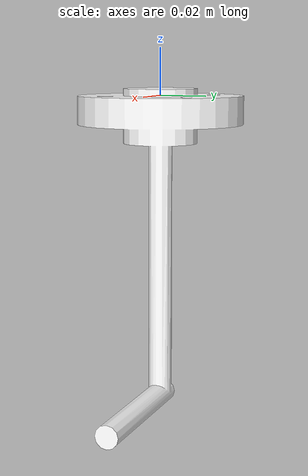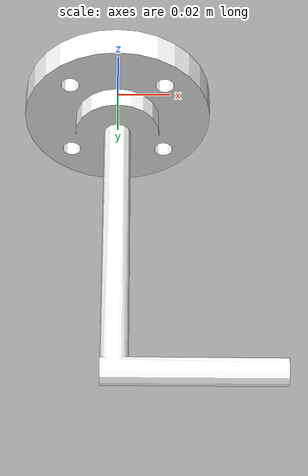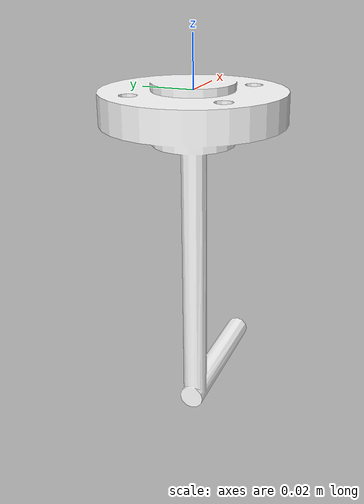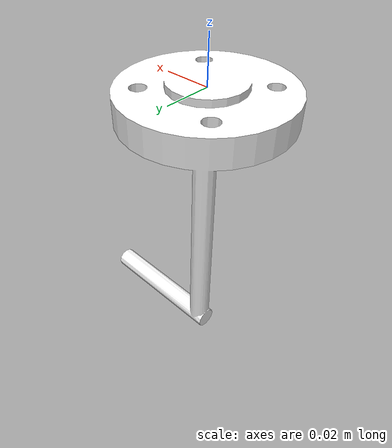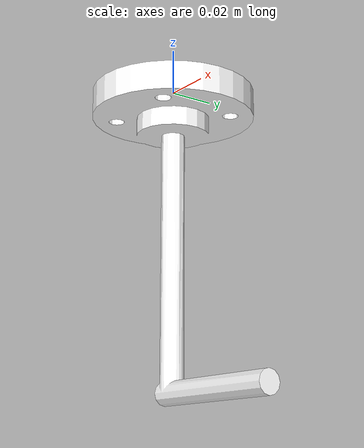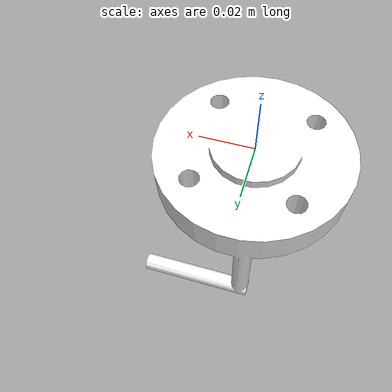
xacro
<?xml version="1.0"?>
<robot xmlns:xacro="http://ros.org/wiki/xacro">

  <xacro:include filename="$(find ur_e_description)/urdf/ur.transmission.xacro" />
  <xacro:include filename="$(find ur_e_description)/urdf/ur.gazebo.xacro" />
<xacro:arg name="kinematics_config" default="$(find ur_e_description)/config/ur5e_default.yaml"/>
  <xacro:include filename="$(find end_effector)/urdf/end_effector.urdf.xacro" />
  <!--xacro:macro kinematics_file="${load_yaml('$(arg kinematics_config)')}"-->
  <xacro:macro name="cylinder_inertial" params="radius length mass *origin">
    <inertial>
      <mass value="${mass}" />
      <xacro:insert_block name="origin" />
      <inertia ixx="${0.0833333 * mass * (3 * radius * radius + length * length)}" ixy="0.0" ixz="0.0"
        iyy="${0.0833333 * mass * (3 * radius * radius + length * length)}" iyz="0.0"
        izz="${0.5 * mass * radius * radius}" />
    </inertial>
  </xacro:macro>

  <xacro:macro name="ur5e_robot" params="prefix joint_limited
    shoulder_pan_lower_limit:=${-pi}    shoulder_pan_upper_limit:=${pi}
    shoulder_lift_lower_limit:=${-pi}    shoulder_lift_upper_limit:=${pi}
    elbow_joint_lower_limit:=${-pi}    elbow_joint_upper_limit:=${pi}
    wrist_1_lower_limit:=${-pi}    wrist_1_upper_limit:=${pi}
    wrist_2_lower_limit:=${-pi}    wrist_2_upper_limit:=${pi}
    wrist_3_lower_limit:=${-pi}    wrist_3_upper_limit:=${pi}
    transmission_hw_interface:=hardware_interface/PositionJointInterface
    safety_limits:=false safety_pos_margin:=0.15
    safety_k_position:=20
    kinematics_file=${load_yaml('$(arg kinematics_config)')}">

    <xacro:property name="__kinematics" value="${kinematics_file['kinematics']}"/>

    <!-- Inertia parameters -->
    <xacro:property name="base_mass" value="4.0" />  <!-- This mass might be incorrect -->
    <xacro:property name="shoulder_mass" value="3.7000" />
    <xacro:property name="upper_arm_mass" value="8.3930" />
    <xacro:property name="forearm_mass" value="2.2750" />
    <xacro:property name="wrist_1_mass" value="1.2190" />
    <xacro:property name="wrist_2_mass" value="1.2190" />
    <xacro:property name="wrist_3_mass" value="0.1879" />

    <xacro:property name="shoulder_cog" value="0.0 0.00193 -0.02561" />
    <xacro:property name="upper_arm_cog" value="0.0 -0.024201 0.2125" />
    <xacro:property name="forearm_cog" value="0.0 0.0265 0.11993" />
    <xacro:property name="wrist_1_cog" value="0.0 0.110949 0.01634" />
    <xacro:property name="wrist_2_cog" value="0.0 0.0018 0.11099" />
    <xacro:property name="wrist_3_cog" value="0.0 0.001159 0.0" />

    <!-- Arbitrary offsets for shoulder/elbow joints -->
    <xacro:property name="shoulder_offset" value="0.138" />
    <xacro:property name="elbow_offset" value="0.007" />
    <xacro:property name="upper_arm_inertia_offset" value="0.138" />  <!-- measured from model -->

    <!-- link lengths used in model -->

    <xacro:property name="shoulder_radius" value="0.060" />   <!-- manually measured -->
    <xacro:property name="upper_arm_radius" value="0.054" />  <!-- manually measured -->
    <xacro:property name="elbow_radius" value="0.060" />      <!-- manually measured -->
    <xacro:property name="forearm_radius" value="0.040" />    <!-- manually measured -->
    <xacro:property name="wrist_radius" value="0.045" />      <!-- manually measured -->

    <!-- This is for compatibility reasons, as transformation between base and base_link was always 180 degree in the ur_description -->
    <xacro:property name="base_correction" value="${pi}" />

    <link name="${prefix}base_link" >
      <visual>
        <origin xyz="0 0 0" rpy="0 0 ${base_correction}"/>
        <geometry>
          <mesh filename="package://ur_e_description/meshes/ur5e/visual/base.dae" />
        </geometry>
        <material name="LightGrey">
          <color rgba="0.7 0.7 0.7 1.0"/>
        </material>
      </visual>
      <collision>
        <origin xyz="0 0 0" rpy="0 0 ${base_correction}"/>
        <geometry>
          <mesh filename="package://ur_e_description/meshes/ur5e/collision/base.stl" />
        </geometry>
      </collision>
      <xacro:cylinder_inertial radius="0.06" length="0.05" mass="${base_mass}">
        <origin xyz="0.0 0.0 0.0" rpy="0 0 0" />
      </xacro:cylinder_inertial>
    </link>

    <joint name="${prefix}shoulder_pan_joint" type="revolute">
      <parent link="${prefix}base_link" />
      <child link = "${prefix}shoulder_link" />
      <origin xyz="${__kinematics['shoulder']['x']} ${__kinematics['shoulder']['y']} ${__kinematics['shoulder']['z']}" rpy="${__kinematics['shoulder']['roll']} ${__kinematics['shoulder']['pitch']} ${__kinematics['shoulder']['yaw'] + base_correction}" />
      <axis xyz="0 0 1" />
      <xacro:unless value="${joint_limited}">
        <limit lower="${-2.0 * pi}" upper="${2.0 * pi}" effort="150.0" velocity="3.14"/>
        <xacro:if value="${safety_limits}">
          <safety_controller soft_lower_limit="${-2.0 * pi + safety_pos_margin}" soft_upper_limit="${2.0 * pi - safety_pos_margin}" k_position="${safety_k_position}" k_velocity="0.0"/>
        </xacro:if>
      </xacro:unless>
      <xacro:if value="${joint_limited}">
        <limit lower="${shoulder_pan_lower_limit}" upper="${shoulder_pan_upper_limit}" effort="150.0" velocity="3.14"/>
        <xacro:if value="${safety_limits}">
          <safety_controller soft_lower_limit="${shoulder_pan_lower_limit + safety_pos_margin}" soft_upper_limit="${shoulder_pan_upper_limit - safety_pos_margin}" k_position="${safety_k_position}" k_velocity="0.0"/>
        </xacro:if>
      </xacro:if>
      <dynamics damping="0.0" friction="0.0"/>
    </joint>

    <link name="${prefix}shoulder_link">
      <visual>
        <origin xyz="0 0 0" rpy="0 0 ${pi}"/>
        <geometry>
          <mesh filename="package://ur_e_description/meshes/ur5e/visual/shoulder.dae" />
        </geometry>
        <material name="LightGrey">
          <color rgba="0.7 0.7 0.7 1.0"/>
        </material>
      </visual>
      <collision>
        <origin xyz="0 0 0" rpy="0 0 ${pi}"/>
        <geometry>
          <mesh filename="package://ur_e_description/meshes/ur5e/collision/shoulder.stl" />
        </geometry>
      </collision>
      <xacro:cylinder_inertial radius="0.06" length="0.15" mass="${shoulder_mass}">
        <origin xyz="0.0 0.0 0.0" rpy="0 0 0" />
      </xacro:cylinder_inertial>
    </link>

    <joint name="${prefix}shoulder_lift_joint" type="revolute">
      <parent link="${prefix}shoulder_link" />
      <child link = "${prefix}upper_arm_link" />
      <origin xyz="${__kinematics['upper_arm']['x']} ${__kinematics['upper_arm']['y']} ${__kinematics['upper_arm']['z']}" rpy="${__kinematics['upper_arm']['roll']} ${__kinematics['upper_arm']['pitch']} ${__kinematics['upper_arm']['yaw']}" />
      <axis xyz="0 0 1" />
      <xacro:unless value="${joint_limited}">
        <limit lower="${-2.0 * pi}" upper="${2.0 * pi}" effort="150.0" velocity="3.14"/>
        <xacro:if value="${safety_limits}">
          <safety_controller soft_lower_limit="${-2.0 * pi + safety_pos_margin}" soft_upper_limit="${2.0 * pi - safety_pos_margin}" k_position="${safety_k_position}" k_velocity="0.0"/>
        </xacro:if>
      </xacro:unless>
      <xacro:if value="${joint_limited}">
        <limit lower="${shoulder_lift_lower_limit}" upper="${shoulder_lift_upper_limit}" effort="150.0" velocity="3.14"/>
        <xacro:if value="${safety_limits}">
          <safety_controller soft_lower_limit="${shoulder_lift_lower_limit + safety_pos_margin}" soft_upper_limit="${shoulder_lift_upper_limit - safety_pos_margin}" k_position="${safety_k_position}" k_velocity="0.0"/>
        </xacro:if>
      </xacro:if>
      <dynamics damping="0.0" friction="0.0"/>
    </joint>

    <link name="${prefix}upper_arm_link">
      <visual>
        <origin xyz="0 0 ${shoulder_offset}" rpy="${pi/2} 0 ${-pi/2}"/>
        <geometry>
          <mesh filename="package://ur_e_description/meshes/ur5e/visual/upperarm.dae" />
        </geometry>
        <material name="LightGrey">
          <color rgba="0.7 0.7 0.7 1.0"/>
        </material>
      </visual>
      <collision>
        <origin xyz="0 0 ${shoulder_offset}" rpy="${pi/2} 0 ${-pi/2}"/>
        <geometry>
          <mesh filename="package://ur_e_description/meshes/ur5e/collision/upperarm.stl" />
        </geometry>
      </collision>
      <xacro:cylinder_inertial radius="0.075" length="${-1*__kinematics['forearm']['x']}" mass="${upper_arm_mass}">
        <origin xyz="${0.5*__kinematics['forearm']['x']} 0.0 ${upper_arm_inertia_offset}" rpy="0 ${pi/2} 0" />
      </xacro:cylinder_inertial>
    </link>

    <joint name="${prefix}elbow_joint" type="revolute">
      <parent link="${prefix}upper_arm_link" />
      <child link = "${prefix}forearm_link" />
      <origin xyz="${__kinematics['forearm']['x']} ${__kinematics['forearm']['y']} ${__kinematics['forearm']['z']}" rpy="${__kinematics['forearm']['roll']} ${__kinematics['forearm']['pitch']} ${__kinematics['forearm']['yaw']}" />
      <axis xyz="0 0 1" />
      <xacro:unless value="${joint_limited}">
        <limit lower="${-pi}" upper="${pi}" effort="150.0" velocity="3.14"/>
        <xacro:if value="${safety_limits}">
          <safety_controller soft_lower_limit="${-2.0 * pi + safety_pos_margin}" soft_upper_limit="${2.0 * pi - safety_pos_margin}" k_position="${safety_k_position}" k_velocity="0.0"/>
        </xacro:if>
      </xacro:unless>
      <xacro:if value="${joint_limited}">
        <limit lower="${elbow_joint_lower_limit}" upper="${elbow_joint_upper_limit}" effort="150.0" velocity="3.14"/>
        <xacro:if value="${safety_limits}">
          <safety_controller soft_lower_limit="${elbow_joint_lower_limit + safety_pos_margin}" soft_upper_limit="${elbow_joint_upper_limit - safety_pos_margin}" k_position="${safety_k_position}" k_velocity="0.0"/>
        </xacro:if>
      </xacro:if>
      <dynamics damping="0.0" friction="0.0"/>
    </joint>

    <link name="${prefix}forearm_link">
      <visual>
        <origin xyz="0 0 ${elbow_offset}" rpy="${pi/2} 0 ${-pi/2}"/>
        <geometry>
          <mesh filename="package://ur_e_description/meshes/ur5e/visual/forearm.dae" />
        </geometry>
        <material name="LightGrey">
          <color rgba="0.7 0.7 0.7 1.0"/>
        </material>
      </visual>
      <collision>
        <origin xyz="0 0 ${elbow_offset}" rpy="${pi/2} 0 ${-pi/2}"/>
        <geometry>
          <mesh filename="package://ur_e_description/meshes/ur5e/collision/forearm.stl" />
        </geometry>
      </collision>
      <xacro:cylinder_inertial radius="0.075" length="${-1*__kinematics['wrist_1']['x']}" mass="${forearm_mass}">
        <origin xyz="${0.5*__kinematics['forearm']['x']} 0.0 ${elbow_offset}" rpy="0 ${pi/2} 0" />
      </xacro:cylinder_inertial>
    </link>

    <joint name="${prefix}wrist_1_joint" type="revolute">
      <parent link="${prefix}forearm_link" />
      <child link = "${prefix}wrist_1_link" />
      <origin xyz="${__kinematics['wrist_1']['x']} ${__kinematics['wrist_1']['y']} ${__kinematics['wrist_1']['z']}" rpy="${__kinematics['wrist_1']['roll']} ${__kinematics['wrist_1']['pitch']} ${__kinematics['wrist_1']['yaw']}" />
      <axis xyz="0 0 1" />
      <xacro:unless value="${joint_limited}">
        <limit lower="${-2.0 * pi}" upper="${2.0 * pi}" effort="28.0" velocity="6.28"/>
        <xacro:if value="${safety_limits}">
          <safety_controller soft_lower_limit="${-2.0 * pi + safety_pos_margin}" soft_upper_limit="${2.0 * pi - safety_pos_margin}" k_position="${safety_k_position}" k_velocity="0.0"/>
        </xacro:if>
      </xacro:unless>
      <xacro:if value="${joint_limited}">
        <limit lower="${wrist_1_lower_limit}" upper="${wrist_1_upper_limit}" effort="28.0" velocity="6.28"/>
        <xacro:if value="${safety_limits}">
          <safety_controller soft_lower_limit="${wrist_1_lower_limit + safety_pos_margin}" soft_upper_limit="${wrist_1_upper_limit - safety_pos_margin}" k_position="${safety_k_position}" k_velocity="0.0"/>
        </xacro:if>
      </xacro:if>
      <dynamics damping="0.0" friction="0.0"/>
    </joint>

    <link name="${prefix}wrist_1_link">
      <visual>
        <origin xyz="0 0 -0.127" rpy="${pi/2} 0 0"/>
        <geometry>
          <mesh filename="package://ur_e_description/meshes/ur5e/visual/wrist1.dae" />
        </geometry>
        <material name="LightGrey">
          <color rgba="0.7 0.7 0.7 1.0"/>
        </material>
      </visual>
      <collision>
        <origin xyz="0 0 -0.127" rpy="${pi/2} 0 0"/>
        <geometry>
          <mesh filename="package://ur_e_description/meshes/ur5e/collision/wrist1.stl" />
        </geometry>
      </collision>
      <xacro:cylinder_inertial radius="0.075" length="${-1*__kinematics['wrist_2']['y']}" mass="${wrist_1_mass}">
        <origin xyz="0.0 0.0 0.0" rpy="0 0 0" />
      </xacro:cylinder_inertial>
    </link>

    <joint name="${prefix}wrist_2_joint" type="revolute">
      <parent link="${prefix}wrist_1_link" />
      <child link = "${prefix}wrist_2_link" />
      <origin xyz="${__kinematics['wrist_2']['x']} ${__kinematics['wrist_2']['y']} ${__kinematics['wrist_2']['z']}" rpy="${__kinematics['wrist_2']['roll']} ${__kinematics['wrist_2']['pitch']} ${__kinematics['wrist_2']['yaw']}" />
      <axis xyz="0 0 1" />
      <xacro:unless value="${joint_limited}">
        <limit lower="${-2.0 * pi}" upper="${2.0 * pi}" effort="28.0" velocity="6.28"/>
        <xacro:if value="${safety_limits}">
          <safety_controller soft_lower_limit="${-2.0 * pi + safety_pos_margin}" soft_upper_limit="${2.0 * pi - safety_pos_margin}" k_position="${safety_k_position}" k_velocity="0.0"/>
        </xacro:if>
      </xacro:unless>
      <xacro:if value="${joint_limited}">
        <limit lower="${wrist_2_lower_limit}" upper="${wrist_2_upper_limit}" effort="28.0" velocity="6.28"/>
        <xacro:if value="${safety_limits}">
          <safety_controller soft_lower_limit="${wrist_2_lower_limit + safety_pos_margin}" soft_upper_limit="${wrist_2_upper_limit - safety_pos_margin}" k_position="${safety_k_position}" k_velocity="0.0"/>
        </xacro:if>
      </xacro:if>
      <dynamics damping="0.0" friction="0.0"/>
    </joint>

    <link name="${prefix}wrist_2_link">
      <visual>
        <origin xyz="0 0 -0.0997" rpy="0 0 0"/>
        <geometry>
          <mesh filename="package://ur_e_description/meshes/ur5e/visual/wrist2.dae" />
        </geometry>
        <material name="LightGrey">
          <color rgba="0.7 0.7 0.7 1.0"/>
        </material>
      </visual>
      <collision>
        <origin xyz="0 0 -0.0997" rpy="0 0 0"/>
        <geometry>
          <mesh filename="package://ur_e_description/meshes/ur5e/collision/wrist2.stl" />
        </geometry>
      </collision>
      <xacro:cylinder_inertial radius="0.075" length="${__kinematics['wrist_3']['y']}" mass="${wrist_2_mass}">
        <origin xyz="0.0 0.0 0.0" rpy="0 0 0" />
      </xacro:cylinder_inertial>
    </link>

    <joint name="${prefix}wrist_3_joint" type="revolute">
      <parent link="${prefix}wrist_2_link" />
      <child link = "${prefix}wrist_3_link" />
      <origin xyz="${__kinematics['wrist_3']['x']} ${__kinematics['wrist_3']['y']} ${__kinematics['wrist_3']['z']}" rpy="${__kinematics['wrist_3']['roll']} ${__kinematics['wrist_3']['pitch']} ${__kinematics['wrist_3']['yaw']}" />
      <axis xyz="0 0 1" />
      <xacro:unless value="${joint_limited}">
        <limit lower="${-2.0 * pi}" upper="${2.0 * pi}" effort="28.0" velocity="6.28"/>
        <xacro:if value="${safety_limits}">
          <safety_controller soft_lower_limit="${-2.0 * pi + safety_pos_margin}" soft_upper_limit="${2.0 * pi - safety_pos_margin}" k_position="${safety_k_position}" k_velocity="0.0"/>
        </xacro:if>
      </xacro:unless>
      <xacro:if value="${joint_limited}">
        <limit lower="${wrist_3_lower_limit}" upper="${wrist_3_upper_limit}" effort="28.0" velocity="6.28"/>
        <xacro:if value="${safety_limits}">
          <safety_controller soft_lower_limit="${wrist_3_lower_limit + safety_pos_margin}" soft_upper_limit="${wrist_3_upper_limit - safety_pos_margin}" k_position="${safety_k_position}" k_velocity="0.0"/>
        </xacro:if>
      </xacro:if>
      <dynamics damping="0.0" friction="0.0"/>
    </joint>

    <link name="${prefix}wrist_3_link">
      <visual>
        <origin xyz="0 0 -0.0989" rpy="${pi/2} 0 0"/>
        <geometry>
          <mesh filename="package://ur_e_description/meshes/ur5e/visual/wrist3.dae" />
        </geometry>
        <material name="LightGrey">
          <color rgba="0.7 0.7 0.7 1.0"/>
        </material>
      </visual>
      <collision>
        <origin xyz="0 0 -0.0989" rpy="${pi/2} 0 0"/>
        <geometry>
          <mesh filename="package://ur_e_description/meshes/ur5e/collision/wrist3.stl" />
        </geometry>
      </collision>
      <xacro:cylinder_inertial radius="0.045" length="0.05" mass="${wrist_3_mass}">
        <origin xyz="0.0 0.0 ${-0.05/2}" rpy="0 0 0" />
      </xacro:cylinder_inertial>
    </link>

    <joint name="${prefix}ee_fixed_joint" type="fixed">
      <parent link="${prefix}wrist_3_link" />
      <child link = "${prefix}ee_link" />
      <origin xyz="0.0 0.0 0.0" rpy="0.0 ${-pi/2.0} ${pi/2.0}" />
    </joint>

    <link name="${prefix}ee_link">
      <collision>
        <geometry>
          <box size="0.01 0.01 0.01"/>
        </geometry>
        <origin rpy="0 0 0" xyz="-0.01 0 0"/>
      </collision>
    </link>

    <xacro:ur_arm_transmission prefix="${prefix}" />
    <xacro:ur_arm_gazebo prefix="${prefix}" />

    <!-- ROS base_link to UR 'Base' Coordinates transform -->
    <link name="${prefix}base"/>
    <joint name="${prefix}base_link-base_fixed_joint" type="fixed">
      <!-- NOTE: this rotation is only needed as long as base_link itself is
                 not corrected wrt the real robot (ie: rotated over 180
                 degrees)
      -->
      <origin xyz="0 0 0" rpy="0 0 ${-base_correction}"/>
      <parent link="${prefix}base_link"/>
      <child link="${prefix}base"/>
    </joint>

    <!-- Frame coincident with all-zeros TCP on UR controller -->
    <link name="${prefix}tool0"/>
    <joint name="${prefix}wrist_3_link-tool0_fixed_joint" type="fixed">
      <origin xyz="0 0 0" rpy="0 0 0"/>
      <parent link="${prefix}wrist_3_link"/>
      <child link="${prefix}tool0"/>
    </joint>

  </xacro:macro>
</robot>

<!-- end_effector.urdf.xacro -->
<robot
  name="end_effector">
  <link
    name="end_effector">
    <inertial>
      <origin
        xyz="0.0021174 -1.32020000001506E-07 -0.0246"
        rpy="0 0 0" />
      <mass
        value="0.066319" />
      <inertia
        ixx="0.000116"
        ixy="1.57629999999094E-10"
        ixz="1.48E-05"
        iyy="0.00012133"
        iyz="7.19329999994633E-10"
        izz="3.3681E-05" />
    </inertial>
    <visual>
      <origin
        xyz="0 0 0"
        rpy="1.5707963267949 0 0" />
      <geometry>
        <mesh
          filename="package://end_effector/meshes/end_effector_2.0.STL" />
      </geometry>
      <material
        name="">
        <color
          rgba="1 1 1 1" />
        <texture
          filename="package://end_effector/textures/" />
      </material>
    </visual>
    <collision>
      <origin
        xyz="0 0 0"
        rpy="1.5707963267949 0 0" />
      <geometry>
        <mesh
          filename="package://end_effector/meshes/end_effector_2.0.STL" />
      </geometry>
    </collision>
  </link>
</robot>
